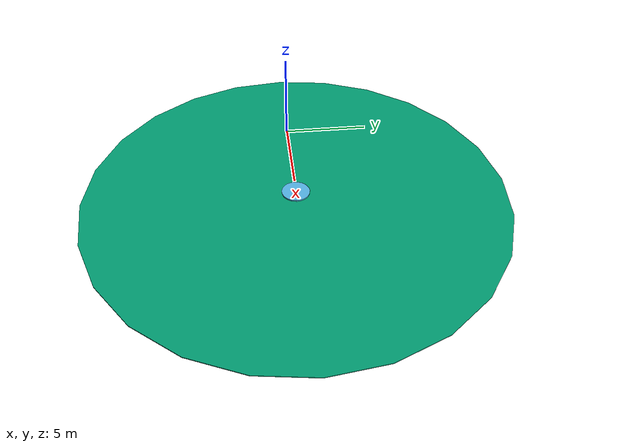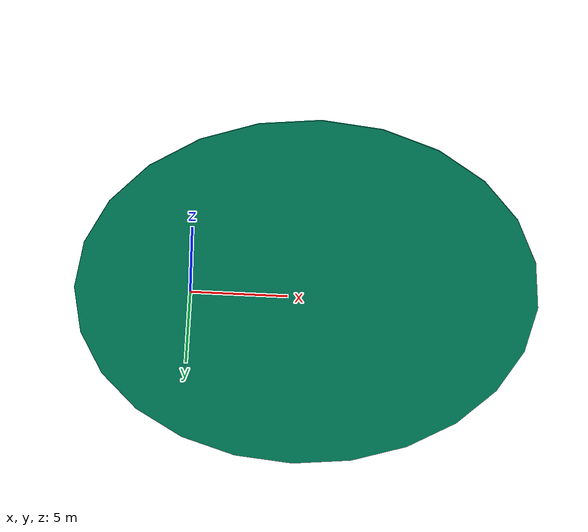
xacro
<?xml version="1.0"?>
<robot name="goal" xmlns:xacro="http://www.ros.org/wiki/xacro">

  <link name="world"/>

  <joint name="fixed" type="fixed">
    <parent link="world"/>
    <child link="goal"/>
  </joint>

  <link name="goal">
    <collision>
      <origin xyz="6 0 0" rpy="0 0 0"/>
      <geometry>
        <cylinder radius="0.0001" length="0.0001"/>
      </geometry>
    </collision>

    <visual>
      <origin xyz="6 0 0.05" rpy="0 0 0"/>
      <geometry>
        <cylinder radius="0.8" length="0.1"/>
      </geometry>
    </visual>

    <inertial>
      <origin xyz="0 0 1" rpy="0 0 0"/>
      <mass value="1"/>
      <inertia
        ixx="1.0" ixy="0.0" ixz="0.0"
        iyy="1.0" iyz="0.0"
        izz="1.0"/>
      </inertial>
  </link>

  <joint name="fixed1" type="fixed">
    <parent link="world"/>
    <child link="range"/>
  </joint>

  <link name="range">
    <collision>
      <origin xyz="6 0.01 0" rpy="0 0 0"/>
      <geometry>
        <cylinder radius="0.0001" length="0.0001"/>
      </geometry>
    </collision>

    <visual>
      <origin xyz="6 0.01 0" rpy="0 0 0"/>
      <geometry>
        <cylinder radius="12" length="0.05"/>
      </geometry>
    </visual>

    <inertial>
      <origin xyz="0 0 1" rpy="0 0 0"/>
      <mass value="1"/>
      <inertia
        ixx="1.0" ixy="0.0" ixz="0.0"
        iyy="1.0" iyz="0.0"
        izz="1.0"/>
      </inertial>
  </link>

  <gazebo reference="goal">
    <visual>
      <material>
        <ambient>0 0.5 0 0.1</ambient>
        <diffuse>0.46 0.46 0.46 0.5</diffuse>
        <specular>0.5 0.5 0.5 32</specular>
        <emissive>0.46 0.46 0.46 0.5</emissive>
      </material>
    </visual>
  </gazebo>

  <gazebo reference="range">
    <visual>
      <material>
        <ambient>0.3 0.3 0.7 0.1</ambient>
        <diffuse>0.46 0.46 0.46 0.5</diffuse>
        <specular>0.5 0.5 0.5 8</specular>
        <emissive>0.46 0.46 0.46 0.1</emissive>
      </material>
    </visual>
  </gazebo>

</robot>
